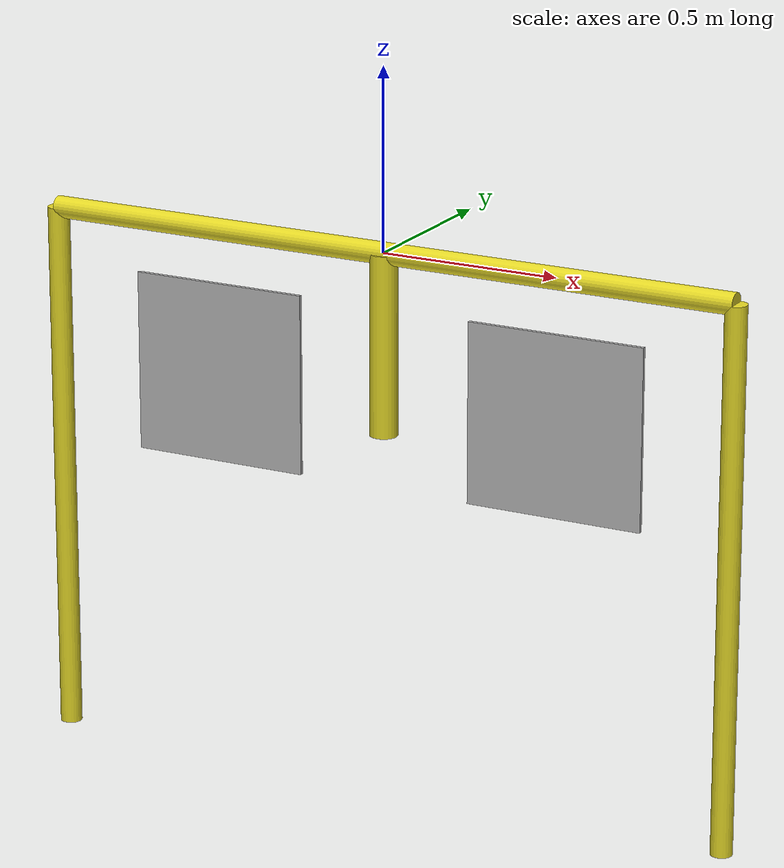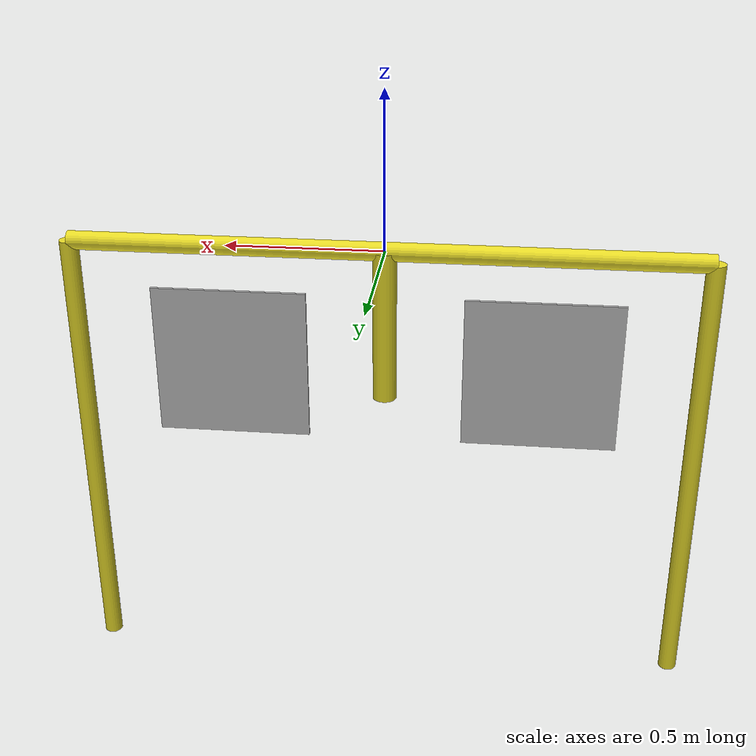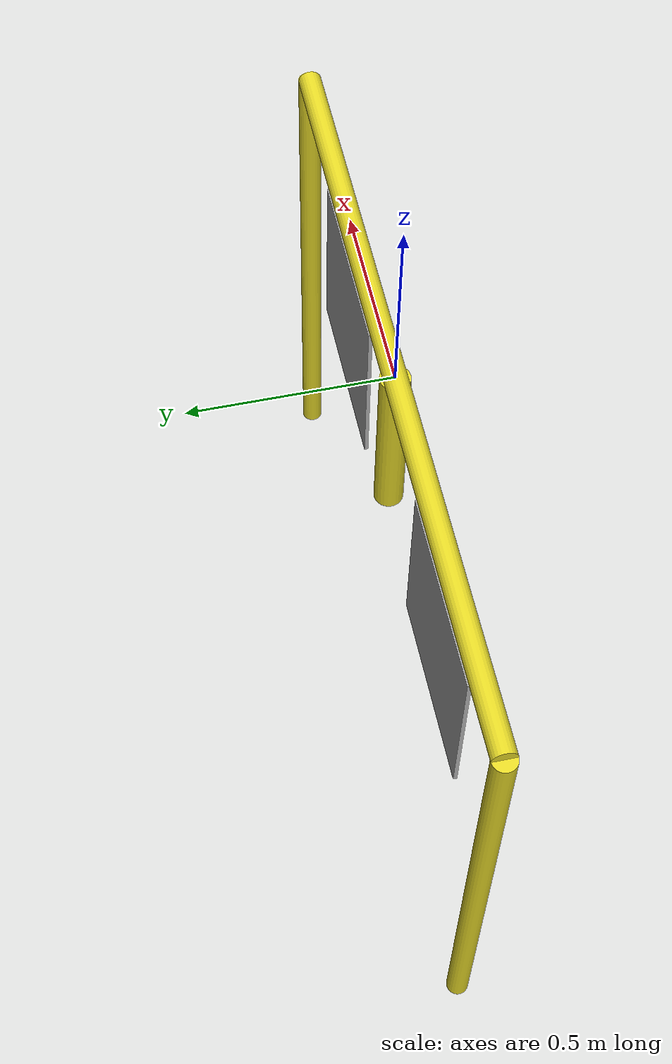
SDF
<?xml version='1.0'?>
<sdf version='1.5'>
<!--
     Written by Kristoffer Rakstad Solberg, Student
     Copyright (c) 2019 Manta AUV, Vortex NTNU.
     All rights reserved.
-->
  <model name='start_gate'>
    <pose> 0 0 0 0 0 0</pose>
    <self_collide> 0 </self_collide>
    <static>1</static>

    <link name='gate_top'>
      <pose> 0 0 0 0 1.5707 0</pose>
      <visual name='gate_top_vis'>
        <geometry>
          <cylinder>
            <radius>0.0300</radius>
            <length>2.0</length>
          </cylinder>
        </geometry>
        <material>
          <script>
            <uri>file://media/materials/scripts/gazebo.material</uri>
            <name>Gazebo/YellowGlow</name>
          </script>
        </material>
      </visual>
      <collision name='gate_top_collide'>
        <geometry>
          <cylinder>
            <radius>0.0300</radius>
            <length>2.0</length>
          </cylinder>
        </geometry>
      </collision>
    </link>

    <link name='gate_mid'>
      <pose> 0 0 -0.25 0 0 0</pose>
      <visual name='gate_mid_vis'>
        <geometry>
          <cylinder>
            <radius>0.0381</radius>
            <length>0.5</length>
          </cylinder>
        </geometry>
        <material>
          <script>
            <uri>file://media/materials/scripts/gazebo.material</uri>
            <name>Gazebo/Yellow</name>
          </script>
        </material>
      </visual>
      <collision name='gate_mid_collide'>
        <geometry>
          <cylinder>
            <radius>0.0381</radius>
            <length>0.5</length>
          </cylinder>
        </geometry>
      </collision>
    </link>

    <link name='box_gman'>
      <pose> -0.5 0 -0.4 0 0 0</pose>
      <visual name='box_gman_vis'>
        <geometry>
          <box>
            <size>0.5 0.01 0.5</size>
          </box>
        </geometry>
        <material>
          <script>
            <uri>model://2018/gate/materials/scripts</uri>
            <uri>model://2018/gate/materials/textures</uri>
            <name>TexturedShape/gman</name>
          </script>
        </material>
      </visual>
    </link>

    <link name='box_bootlegger'>
      <pose> 0.5 0 -0.4 0 0 0</pose>
      <visual name='box_bootlegger_vis'>
        <geometry>
          <box>
            <size>0.5 0.01 0.5</size>
          </box>
        </geometry>
        <material>
          <script>
            <uri>model://2018/gate/materials/scripts</uri>
            <uri>model://2018/gate/materials/textures</uri>
            <name>TexturedShape/bootlegger</name>
          </script>
        </material>
      </visual>
    </link>

    <link name='gate_left'>
      <pose>-1.0 0 -0.75 0 0 0</pose>
      <visual name='gate_left_top'>
        <geometry>
          <cylinder>
            <radius>0.0300</radius>
            <length>1.5</length>
          </cylinder>
        </geometry>
        <material>
          <script>
            <uri>file://media/materials/scripts/gazebo.material</uri>
            <name>Gazebo/YellowGlow</name>
          </script>
        </material>
      </visual>
      <collision name='gate_left_collide'>
        <geometry>
          <cylinder>
            <radius>0.0300</radius>
            <length>1.5</length>
          </cylinder>
        </geometry>
      </collision>
    </link>

    <link name='gate_right'>
      <pose>1.0 0 -0.75 0 0 0</pose>
      <visual name='gate_right_top'>
        <geometry>
          <cylinder>
            <radius>0.0300</radius>
            <length>1.5</length>
          </cylinder>
        </geometry>
        <material>
          <script>
            <uri>file://media/materials/scripts/gazebo.material</uri>
            <name>Gazebo/YellowGlow</name>
          </script>
        </material>
      </visual>
      <collision name='gate_right_collide'>
        <geometry>
          <cylinder>
            <radius>0.0300</radius>
            <length>1.5</length>
          </cylinder>
        </geometry>
      </collision>
    </link>

  </model>
</sdf>
